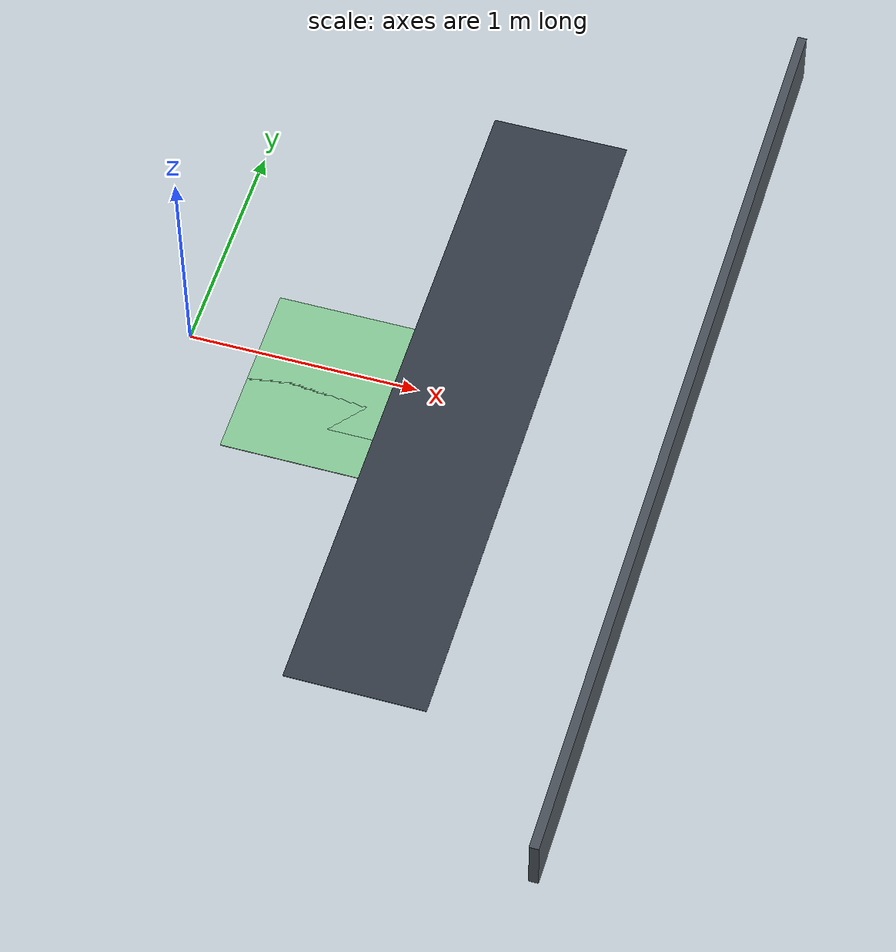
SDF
<sdf version="1.6">
 <world name="sq_community_4p2">
  <include><uri>model://sun</uri></include>
  <model name="sq4_road_east">
   <static>true</static>
   <pose>1.2000 0.0000 0.0000 0 0 0.00000</pose>
   <link name="surface">
    <visual name="surface_vis">
     <pose>0.0000 0.0000 0.0015 0 0 0.00000</pose>
     <geometry><box><size>0.6000 3.0000 0.0030</size></box></geometry>
     <material>
      <ambient>0.2100 0.2400 0.2900 1.0000</ambient>
      <diffuse>0.2100 0.2400 0.2900 1.0000</diffuse>
     </material>
    </visual>
   </link>
  </model>
  <model name="sq4_zone_building_B">
   <static>true</static>
   <pose>0.6000 0.0000 0.0000 0 0 0.00000</pose>
   <link name="surface">
    <visual name="surface_vis">
     <pose>0.0000 0.0000 0.0018 0 0 0.00000</pose>
     <geometry><box><size>0.6000 0.6000 0.0035</size></box></geometry>
     <material>
      <ambient>0.5500 0.8200 0.6200 1.0000</ambient>
      <diffuse>0.5500 0.8200 0.6200 1.0000</diffuse>
     </material>
    </visual>
   </link>
  </model>
  <model name="sq4_zone_building_C">
   <static>true</static>
   <pose>0.6000 -0.3000 0.0000 0 0 0.00000</pose>
   <link name="surface">
    <visual name="surface_vis">
     <pose>0.0000 0.0000 0.0018 0 0 0.00000</pose>
     <geometry><box><size>0.6000 0.4000 0.0035</size></box></geometry>
     <material>
      <ambient>0.5500 0.8200 0.6200 1.0000</ambient>
      <diffuse>0.5500 0.8200 0.6200 1.0000</diffuse>
     </material>
    </visual>
   </link>
  </model>
  <model name="sq4_boundary_east">
   <static>true</static>
   <pose>2.1200 0.0000 0.0000 0 0 0.00000</pose>
   <link name="wall">
    <visual name="wall_vis">
     <pose>0.0000 0.0000 0.1300 0 0 0.00000</pose>
     <geometry><box><size>0.0400 4.2400 0.2600</size></box></geometry>
     <material>
      <ambient>0.3000 0.3300 0.3600 1.0000</ambient>
      <diffuse>0.3000 0.3300 0.3600 1.0000</diffuse>
     </material>
    </visual>
    <collision name="wall_col">
     <pose>0.0000 0.0000 0.1300 0 0 0.00000</pose>
     <geometry><box><size>0.0400 4.2400 0.2600</size></box></geometry>
    </collision>
   </link>
  </model>
 </world>
</sdf>
